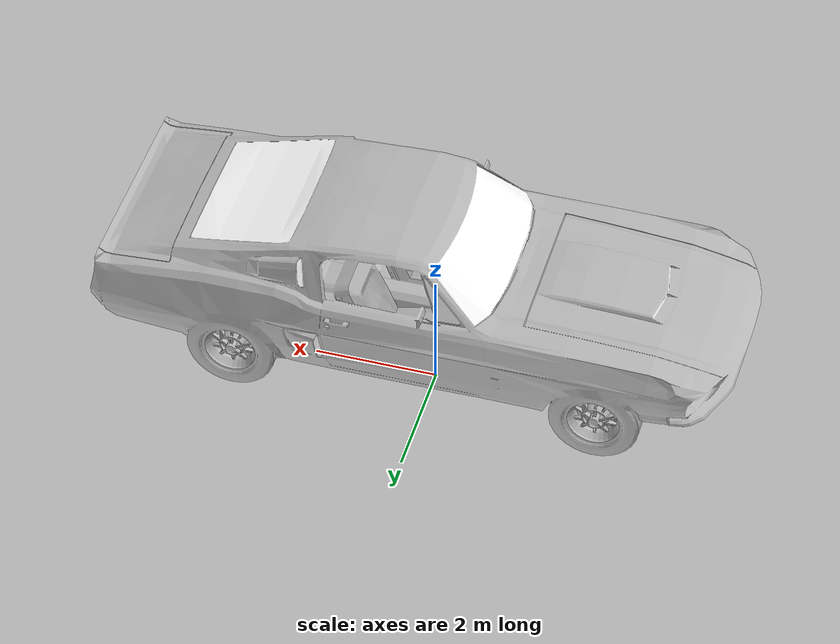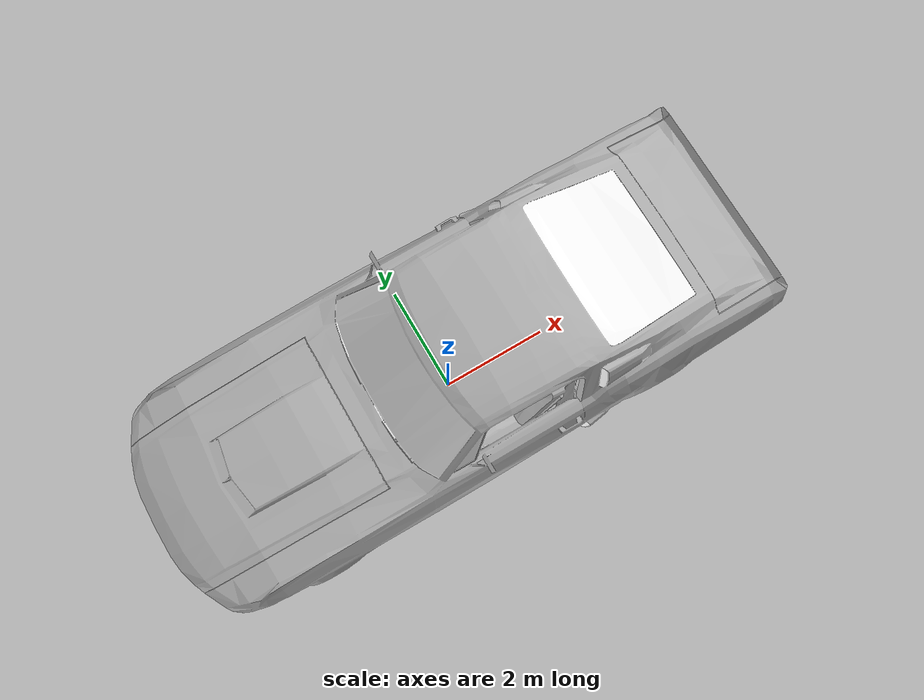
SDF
<?xml version="1.0" ?>
<sdf version='1.5'>
  <model name='car4'>
    <static>true</static>
      <link name='link'>
        <pose frame=''>0 0 0.9 1.57 0 1.57</pose>

        <visual name='visual'>
        <cast_shadows>false</cast_shadows>
          <geometry>
            <mesh>
              <scale>1 1 1</scale>
              <uri>model://car4/meshes/car4.dae</uri>
            </mesh>
          </geometry>

        </visual>
      </link>
  </model>
</sdf>
